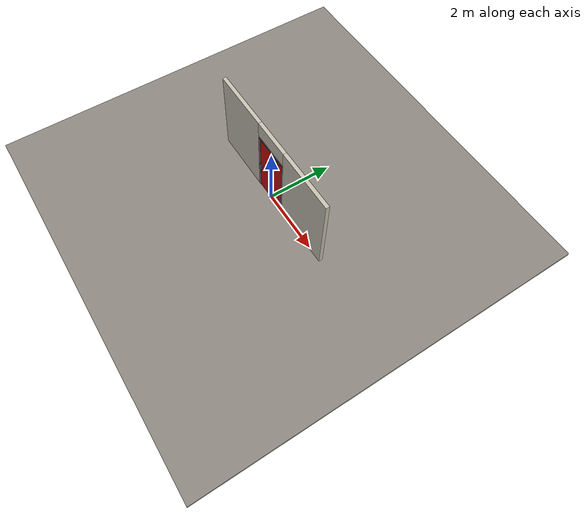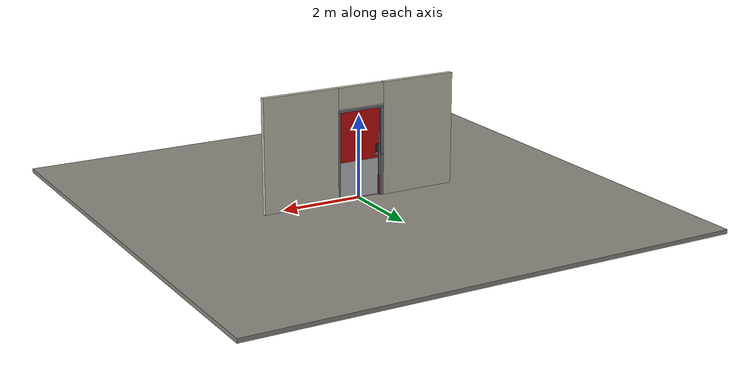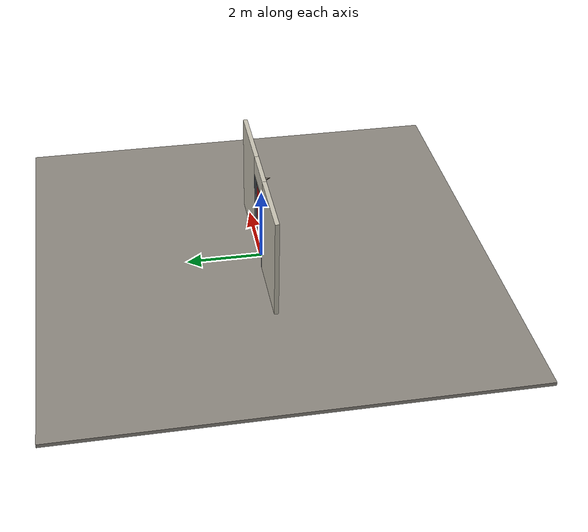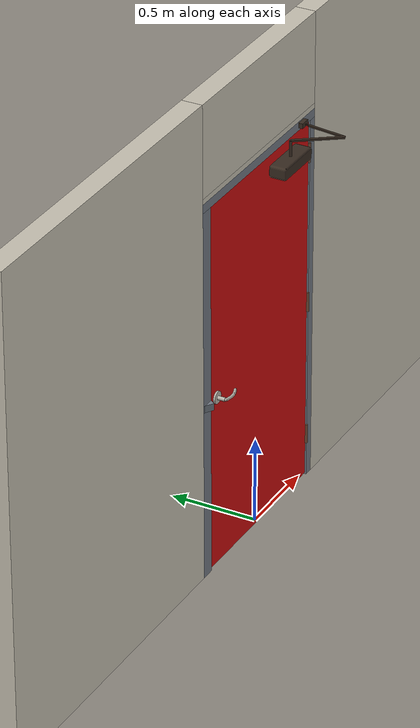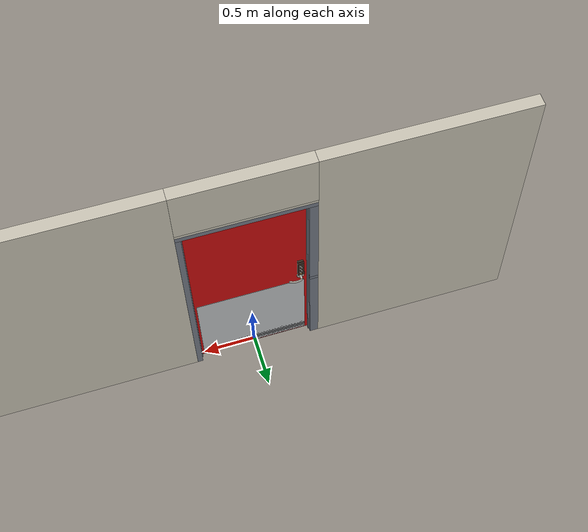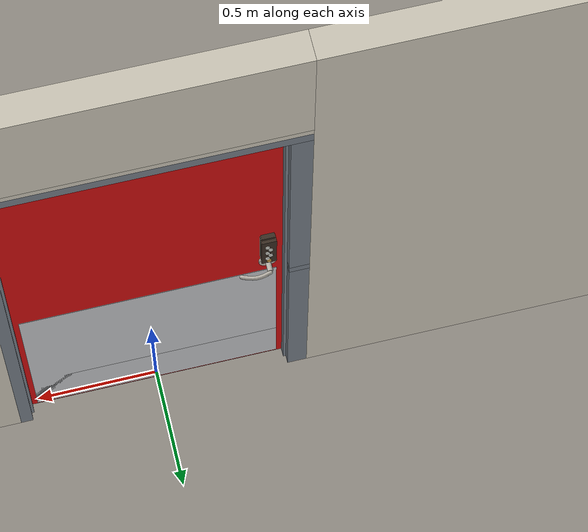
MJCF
<?xml version="1.0" ?>
<mujoco model="db0264_swing_single_full">
  <compiler angle="radian" meshdir="../../hardware" texturedir="../../textures" autolimits="true" inertiafromgeom="false"/>
  <option timestep="0.002" integrator="implicitfast" cone="elliptic" impratio="10" noslip_iterations="3">
    <flag multiccd="enable"/>
  </option>
  <size memory="16M"/>
  <default>
    <geom condim="4" solref="0.005 1" solimp="0.95 0.99 0.001"/>
    <joint solreflimit="0.005 1" solimplimit="0.95 0.99 0.001"/>
    <tendon solreflimit="0.005 1"/>
    <equality solref="0.002 1"/>
  </default>
  <visual>
    <headlight ambient="0.4 0.4 0.4" diffuse="0.7 0.7 0.7" specular="0.2 0.2 0.2"/>
    <quality shadowsize="4096"/>
    <map znear="0.01" zfar="60"/>
  </visual>
  <asset>
    <mesh name="closer_body_fdc4667657" file="closer_body_fdc4667657.obj"/>
    <mesh name="hinge_e22b26c0c1" file="hinge_e22b26c0c1.obj"/>
    <mesh name="hinge_jamb_e1d088f8dc" file="hinge_jamb_e1d088f8dc.obj"/>
    <mesh name="keypad_body_91eb8ded3e" file="keypad_body_91eb8ded3e.obj"/>
    <mesh name="lever_a61139b160" file="lever_a61139b160.obj"/>
    <material name="mat_floor" rgba="0.55 0.53 0.5 1" specular="0.2" shininess="0.15" reflectance="0"/>
    <material name="mat_wall" rgba="0.78 0.76 0.7 1" specular="0.2" shininess="0.1" reflectance="0"/>
    <material name="mat_leaf" rgba="0.8 0.05 0.05 1" specular="0.23" shininess="0.36" reflectance="0.02"/>
    <material name="mat_hinge" rgba="0.45 0.3 0.22 1" specular="0.5" shininess="0.1" reflectance="0.2"/>
    <material name="mat_op_nickel_satin" rgba="0.72 0.7 0.66 1" specular="0.8" shininess="0.65" reflectance="0.4"/>
    <material name="mat_trim" rgba="0.85 0.66 0.3 1" specular="0.8" shininess="0.75" reflectance="0.4"/>
    <material name="mat_keypad" rgba="0.22 0.17 0.13 1" specular="0.8" shininess="0.6" reflectance="0.4"/>
    <material name="mat_key" rgba="0.85 0.85 0.82 1" specular="0.2" shininess="0.5" reflectance="0"/>
    <material name="mat_bolt" rgba="0.75 0.76 0.77 1" specular="0.8" shininess="0.65" reflectance="0.4"/>
    <material name="mat_frame" rgba="0.45 0.48 0.52 1" specular="0.32" shininess="0.6" reflectance="0.08"/>
    <material name="mat_closer" rgba="0.22 0.17 0.13 1" specular="0.8" shininess="0.6" reflectance="0.4"/>
    <material name="mat_kick" rgba="0.75 0.76 0.77 1" specular="0.8" shininess="0.65" reflectance="0.4"/>
    <texture name="skybox" type="skybox" builtin="gradient" rgb1="0.6 0.7 0.85" rgb2="0.9 0.92 0.95" width="256" height="256"/>
  </asset>
  <worldbody>
    <light name="sun" pos="1.5 -2.5 4" dir="-0.3 0.5 -0.8" directional="true" diffuse="0.8 0.8 0.8" specular="0.3 0.3 0.3" castshadow="true"/>
    <light name="fill" pos="-1.5 2.5 3" dir="0.3 -0.5 -0.7" directional="true" diffuse="0.35 0.35 0.4" castshadow="false"/>
    <camera name="robot_view" pos="0 -2.609312 1.812087" xyaxes="1 0 0 0 0.26963 0.962964" fovy="52"/>
    <camera name="far_view" pos="0 2.666313 1.812087" xyaxes="-1 0 0 0 -0.26963 0.962964" fovy="52"/>
    <camera name="iso" pos="-2.004737 -2.187262 2.234138" xyaxes="0.741536 -0.670913 0 0.242917 0.268487 0.932151" fovy="46"/>
    <camera name="detail_handle" pos="-0.1984 -0.877 1.296" xyaxes="0.97561 0.219512 0 -0.070934 0.315262 0.94635" fovy="38"/>
    <geom name="floor" type="box" size="6 6 0.05" pos="0 0 -0.05" material="mat_floor" group="0" contype="1" conaffinity="1" friction="0.8 0.005 0.0001" density="2400"/>
    <geom name="wall_left" type="box" size="0.9415 0.0575 1.3735" pos="-1.5585 0.0285 1.3735" material="mat_wall" group="0" contype="1" conaffinity="1" friction="0.6 0.005 0.0001" density="800"/>
    <geom name="wall_right" type="box" size="0.9565 0.0575 1.3735" pos="1.5435 0.0285 1.3735" material="mat_wall" group="0" contype="1" conaffinity="1" friction="0.6 0.005 0.0001" density="800"/>
    <geom name="wall_header" type="box" size="0.602 0.0575 0.26" pos="-0.015 0.0285 2.487" material="mat_wall" group="0" contype="1" conaffinity="1" friction="0.6 0.005 0.0001" density="800"/>
    <geom name="hinge_0_jamb" type="mesh" mesh="hinge_jamb_e1d088f8dc" pos="0.534 -0.029 0.259" quat="0 0 1 0" material="mat_hinge" group="1" contype="0" conaffinity="0" density="7850"/>
    <geom name="hinge_1_jamb" type="mesh" mesh="hinge_jamb_e1d088f8dc" pos="0.534 -0.029 1.076" quat="0 0 1 0" material="mat_hinge" group="1" contype="0" conaffinity="0" density="7850"/>
    <geom name="hinge_2_jamb" type="mesh" mesh="hinge_jamb_e1d088f8dc" pos="0.534 -0.029 1.963" quat="0 0 1 0" material="mat_hinge" group="1" contype="0" conaffinity="0" density="7850"/>
    <geom name="jamb_hinge" type="box" size="0.025 0.0575 1.0735" pos="0.562 0.0285 1.0735" material="mat_frame" group="0" contype="1" conaffinity="1" friction="0.6 0.005 0.0001" density="300"/>
    <geom name="strike_1016_wall_n" type="box" size="0.04 0.0375 0.02" pos="-0.577 0.0485 1.016" material="mat_frame" group="0" contype="1" conaffinity="1" friction="0.6 0.005 0.0001" density="300"/>
    <geom name="strike_1016_wall_p" type="box" size="0.04 0.008 0.02" pos="-0.577 -0.019 1.016" material="mat_frame" group="0" contype="1" conaffinity="1" friction="0.6 0.005 0.0001" density="300"/>
    <geom name="strike_1016_ramp" type="box" size="0.04 0.018028 0.02" pos="-0.580282 -0.019812 1.016" quat="0.957092 0 0 -0.289784" material="mat_frame" group="0" contype="1" conaffinity="1" friction="0.12 0.005 0.0001" density="300"/>
    <geom name="strike_1016_back" type="box" size="0.0285 0.011 0.02" pos="-0.5885 0 1.016" material="mat_frame" group="0" contype="1" conaffinity="1" friction="0.6 0.005 0.0001" density="300"/>
    <geom name="jamb_strike_0" type="box" size="0.04 0.0575 0.498" pos="-0.577 0.0285 0.498" material="mat_frame" group="0" contype="1" conaffinity="1" friction="0.6 0.005 0.0001" density="300"/>
    <geom name="jamb_strike_1" type="box" size="0.04 0.0575 0.5555" pos="-0.577 0.0285 1.5915" material="mat_frame" group="0" contype="1" conaffinity="1" friction="0.6 0.005 0.0001" density="300"/>
    <geom name="jamb_head" type="box" size="0.602 0.0575 0.025" pos="-0.015 0.0285 2.172" material="mat_frame" group="0" contype="1" conaffinity="1" friction="0.6 0.005 0.0001" density="300"/>
    <geom name="head_stud" type="box" size="0.602 0.0575 0.015" pos="-0.015 0.0285 2.212" material="mat_wall" group="0" contype="1" conaffinity="1" friction="0.6 0.005 0.0001" density="500"/>
    <geom name="stop_hinge" type="box" size="0.0055 0.016 1.0735" pos="0.5315 0.0385 1.0735" material="mat_frame" group="0" contype="1" conaffinity="1" friction="0.6 0.005 0.0001" density="300"/>
    <geom name="stop_strike" type="box" size="0.0055 0.016 1.0735" pos="-0.5315 0.0385 1.0735" material="mat_frame" group="0" contype="1" conaffinity="1" friction="0.6 0.005 0.0001" density="300"/>
    <geom name="stop_head" type="box" size="0.537 0.016 0.0055" pos="0 0.0385 2.1415" material="mat_frame" group="0" contype="1" conaffinity="1" friction="0.6 0.005 0.0001" density="300"/>
    <geom name="closer_bracket" type="box" size="0.03 0.012 0.014" pos="0.437 -0.041 2.177" material="mat_closer" group="1" contype="0" conaffinity="0" density="2700"/>
    <site name="approach_point" pos="0 -1.5 0" quat="1 0 0 0" size="0.05" rgba="0.2 0.9 0.2 0.5" group="4"/>
    <site name="goal_point" pos="0 1.5 0" quat="1 0 0 0" size="0.05" rgba="0.2 0.9 0.2 0.5" group="4"/>
    <site name="door_plane_center" pos="0 0 1.0735" quat="1 0 0 0" size="0.02" rgba="0.2 0.9 0.2 0.5" group="4"/>
    <body name="leaf" pos="0.537 0 0">
      <inertial pos="-0.495524 -0.008277 1.129143" mass="68.154272" quat="0.465127 0.488717 0.524075 -0.519768" diaginertia="5.863633266 34.327368754 40.091614627"/>
      <joint name="leaf_hinge" type="hinge" axis="0 0 1" pos="-0.003 -0.029 0" limited="true" range="0 1.745329" damping="12.49954" frictionloss="8.134149" stiffness="15.673579" springref="-1.79155" armature="0.02"/>
      <geom name="leaf_slab" type="box" size="0.5335 0.022 1.067" pos="-0.5365 0 1.076" material="mat_leaf" group="0" contype="1" conaffinity="1" friction="0.4 0.005 0.0001" density="1"/>
      <geom name="hinge_0" type="mesh" mesh="hinge_e22b26c0c1" pos="-0.003 -0.029 0.259" quat="0 0 1 0" material="mat_hinge" group="1" contype="0" conaffinity="0" density="7850"/>
      <geom name="hinge_1" type="mesh" mesh="hinge_e22b26c0c1" pos="-0.003 -0.029 1.076" quat="0 0 1 0" material="mat_hinge" group="1" contype="0" conaffinity="0" density="7850"/>
      <geom name="hinge_2" type="mesh" mesh="hinge_e22b26c0c1" pos="-0.003 -0.029 1.963" quat="0 0 1 0" material="mat_hinge" group="1" contype="0" conaffinity="0" density="7850"/>
      <geom name="leaf_keypad_body" type="mesh" mesh="keypad_body_91eb8ded3e" pos="-1.005 0.022 1.156" quat="0 0 0.707107 0.707107" material="mat_keypad" group="0" contype="1" conaffinity="1" friction="0.6 0.005 0.0001" density="2000"/>
      <geom name="leaf_keypad_cylinder" type="cylinder" size="0.009 0.002" pos="-1.005 0.056 1.081" quat="0.707107 -0.707107 0 0" material="mat_trim" group="1" contype="0" conaffinity="0" density="7100"/>
      <geom name="closer_body" type="mesh" mesh="closer_body_fdc4667657" pos="-0.3 -0.022 2.054" quat="0 0 -0.707107 0.707107" material="mat_closer" group="1" contype="0" conaffinity="0" density="2000"/>
      <geom name="closer_body_col" type="box" size="0.145 0.05 0.035" pos="-0.3 -0.072 2.054" material="mat_closer" group="3" contype="1" conaffinity="1" rgba="0.8 0.3 0.3 0.25" friction="0.6 0.005 0.0001" density="2000"/>
      <geom name="closer_pinion_shaft" type="cylinder" size="0.008 0.0615" pos="-0.3 -0.072 2.1155" material="mat_closer" group="1" contype="0" conaffinity="0" density="2700"/>
      <geom name="kick_plate_p" type="box" size="0.5035 0.0008 0.125" pos="-0.5365 0.0228 0.144" material="mat_kick" group="2" contype="0" conaffinity="0" density="7900"/>
      <geom name="armor_plate" type="box" size="0.5035 0.0008 0.45" pos="-0.5365 0.0228 0.469" material="mat_kick" group="2" contype="0" conaffinity="0" density="7900"/>
      <site name="leaf_edge_mid" pos="-1.07 0 1.067" quat="1 0 0 0" size="0.02" rgba="0.2 0.9 0.2 0.5" group="4"/>
      <body name="leaf_handle" pos="-1.005 0 1.016">
        <inertial pos="0.022132 -0.050687 0" mass="0.463269" quat="0.312008 0 0 0.950079" diaginertia="0.000227859 0.000847742 0.000992066"/>
        <joint name="leaf_handle_hinge" type="hinge" axis="0 1 0" limited="true" range="0 0.87" damping="0.208392" frictionloss="0.052" stiffness="1" springref="-0.35" armature="0.01"/>
        <geom name="leaf_handle_spindle" type="cylinder" size="0.006 0.03" pos="0 0 0" quat="0.707107 -0.707107 0 0" material="mat_op_nickel_satin" group="1" contype="0" conaffinity="0" density="7850"/>
        <geom name="leaf_handle_lever_n" type="mesh" mesh="lever_a61139b160" pos="0 -0.022 0" quat="0 0 -0.707107 0.707107" material="mat_op_nickel_satin" group="1" contype="0" conaffinity="0" density="3000"/>
        <geom name="leaf_handle_lever_col_n" type="capsule" size="0.008 0.048" pos="0.056 -0.077 0" quat="0.707107 0 0.707107 0" material="mat_op_nickel_satin" group="3" contype="1" conaffinity="1" rgba="0.8 0.3 0.3 0.25" friction="0.7 0.01 0.0001" density="3000"/>
        <geom name="leaf_handle_hub_col_n" type="cylinder" size="0.012 0.022" pos="0 -0.052 0" quat="0.707107 -0.707107 0 0" material="mat_op_nickel_satin" group="3" contype="1" conaffinity="1" rgba="0.8 0.3 0.3 0.25" friction="0.6 0.005 0.0001" density="3000"/>
        <site name="leaf_handle_grip_n" pos="0.0896 -0.077 0" quat="1 0 0 0" size="0.012" rgba="0.2 0.9 0.2 0.5" group="4"/>
      </body>
      <body name="leaf_keypad_key_1" pos="-0.999 0.054 1.208">
        <inertial pos="0 0.002 0" mass="0.001221" quat="0 0 0.707107 -0.707107" diaginertia="0.000000026 0.000000026 0.000000049"/>
        <joint name="leaf_keypad_key_1_slide" type="slide" axis="0 -1 0" limited="true" range="0 0.004" damping="17.146" frictionloss="0.05" stiffness="1500" springref="-0.004" armature="0.1"/>
        <geom name="leaf_keypad_key_1_geom" type="cylinder" size="0.009 0.002" pos="0 0.002 0" quat="0.707107 -0.707107 0 0" material="mat_key" group="0" contype="1" conaffinity="1" friction="0.6 0.005 0.0001" density="1200"/>
        <site name="leaf_keypad_key_1_press" pos="0 0.006 0" quat="1 0 0 0" size="0.008" rgba="0.2 0.9 0.2 0.5" group="4"/>
      </body>
      <body name="leaf_keypad_key_2" pos="-1.011 0.054 1.182">
        <inertial pos="0 0.002 0" mass="0.001221" quat="0 0 0.707107 -0.707107" diaginertia="0.000000026 0.000000026 0.000000049"/>
        <joint name="leaf_keypad_key_2_slide" type="slide" axis="0 -1 0" limited="true" range="0 0.004" damping="17.146" frictionloss="0.05" stiffness="1500" springref="-0.004" armature="0.1"/>
        <geom name="leaf_keypad_key_2_geom" type="cylinder" size="0.009 0.002" pos="0 0.002 0" quat="0.707107 -0.707107 0 0" material="mat_key" group="0" contype="1" conaffinity="1" friction="0.6 0.005 0.0001" density="1200"/>
        <site name="leaf_keypad_key_2_press" pos="0 0.006 0" quat="1 0 0 0" size="0.008" rgba="0.2 0.9 0.2 0.5" group="4"/>
      </body>
      <body name="leaf_keypad_key_3" pos="-0.999 0.054 1.156">
        <inertial pos="0 0.002 0" mass="0.001221" quat="0 0 0.707107 -0.707107" diaginertia="0.000000026 0.000000026 0.000000049"/>
        <joint name="leaf_keypad_key_3_slide" type="slide" axis="0 -1 0" limited="true" range="0 0.004" damping="17.146" frictionloss="0.05" stiffness="1500" springref="-0.004" armature="0.1"/>
        <geom name="leaf_keypad_key_3_geom" type="cylinder" size="0.009 0.002" pos="0 0.002 0" quat="0.707107 -0.707107 0 0" material="mat_key" group="0" contype="1" conaffinity="1" friction="0.6 0.005 0.0001" density="1200"/>
        <site name="leaf_keypad_key_3_press" pos="0 0.006 0" quat="1 0 0 0" size="0.008" rgba="0.2 0.9 0.2 0.5" group="4"/>
      </body>
      <body name="leaf_keypad_key_4" pos="-1.011 0.054 1.13">
        <inertial pos="0 0.002 0" mass="0.001221" quat="0 0 0.707107 -0.707107" diaginertia="0.000000026 0.000000026 0.000000049"/>
        <joint name="leaf_keypad_key_4_slide" type="slide" axis="0 -1 0" limited="true" range="0 0.004" damping="17.146" frictionloss="0.05" stiffness="1500" springref="-0.004" armature="0.1"/>
        <geom name="leaf_keypad_key_4_geom" type="cylinder" size="0.009 0.002" pos="0 0.002 0" quat="0.707107 -0.707107 0 0" material="mat_key" group="0" contype="1" conaffinity="1" friction="0.6 0.005 0.0001" density="1200"/>
        <site name="leaf_keypad_key_4_press" pos="0 0.006 0" quat="1 0 0 0" size="0.008" rgba="0.2 0.9 0.2 0.5" group="4"/>
      </body>
      <body name="leaf_keypad_key_5" pos="-0.999 0.054 1.104">
        <inertial pos="0 0.002 0" mass="0.001221" quat="0 0 0.707107 -0.707107" diaginertia="0.000000026 0.000000026 0.000000049"/>
        <joint name="leaf_keypad_key_5_slide" type="slide" axis="0 -1 0" limited="true" range="0 0.004" damping="17.146" frictionloss="0.05" stiffness="1500" springref="-0.004" armature="0.1"/>
        <geom name="leaf_keypad_key_5_geom" type="cylinder" size="0.009 0.002" pos="0 0.002 0" quat="0.707107 -0.707107 0 0" material="mat_key" group="0" contype="1" conaffinity="1" friction="0.6 0.005 0.0001" density="1200"/>
        <site name="leaf_keypad_key_5_press" pos="0 0.006 0" quat="1 0 0 0" size="0.008" rgba="0.2 0.9 0.2 0.5" group="4"/>
      </body>
      <body name="leaf_handle_out" pos="-1.005 0 1.016">
        <inertial pos="0.025007 0.057273 0" mass="0.41" quat="-0.235955 0 0 0.971764" diaginertia="0.000156759 0.000717302 0.000791484"/>
        <joint name="leaf_handle_out_hinge" type="hinge" axis="0 1 0" limited="true" range="0 0.09" damping="0.208382" frictionloss="0.052" stiffness="1" springref="-0.35" armature="0.01"/>
        <geom name="leaf_handle_out_lever_p" type="mesh" mesh="lever_a61139b160" pos="0 0.022 0" quat="0 0 0.707107 0.707107" material="mat_op_nickel_satin" group="1" contype="0" conaffinity="0" density="3000"/>
        <geom name="leaf_handle_out_lever_col_p" type="capsule" size="0.008 0.048" pos="0.056 0.077 0" quat="0.707107 0 0.707107 0" material="mat_op_nickel_satin" group="3" contype="1" conaffinity="1" rgba="0.8 0.3 0.3 0.25" friction="0.7 0.01 0.0001" density="3000"/>
        <geom name="leaf_handle_out_hub_col_p" type="cylinder" size="0.012 0.022" pos="0 0.052 0" quat="0.707107 -0.707107 0 0" material="mat_op_nickel_satin" group="3" contype="1" conaffinity="1" rgba="0.8 0.3 0.3 0.25" friction="0.6 0.005 0.0001" density="3000"/>
        <site name="leaf_handle_out_grip_p" pos="0.0896 0.077 0" quat="1 0 0 0" size="0.012" rgba="0.2 0.9 0.2 0.5" group="4"/>
      </body>
      <body name="leaf_latch_bolt" pos="-1.07 0 1.016">
        <inertial pos="0.0055 0 0" mass="0.102826" quat="0.92388 0.382683 0 0" diaginertia="0.000004365 0.000018287 0.000018287"/>
        <joint name="leaf_latch_bolt_slide" type="slide" axis="1 0 0" limited="true" range="0 0.019" damping="2" frictionloss="0.3" stiffness="800" springref="-0.01" armature="0.1"/>
        <geom name="leaf_latch_bolt_capsule" type="capsule" size="0.0095 0.015" pos="0.0055 0 0" quat="0.707107 0 -0.707107 0" material="mat_bolt" group="0" contype="1" conaffinity="1" friction="0.2 0.005 0.0001" density="8500"/>
      </body>
      <body name="closer_arm_main" pos="-0.3 -0.072 2.177" quat="0.890947 0 0 -0.454107">
        <inertial pos="0.14 0 0" mass="0.12096" quat="1 0 0 0" diaginertia="0.000003588 0.00079128 0.000792852"/>
        <joint name="closer_pinion" type="hinge" axis="0 0 1" limited="false" damping="0.01" armature="0.002"/>
        <geom name="closer_arm_main_geom" type="box" size="0.14 0.008 0.005" pos="0.14 0 0" material="mat_closer" group="1" contype="0" conaffinity="0" density="2700"/>
        <body name="closer_arm_fore" pos="0.28 0 0" quat="0.373215 0 0 0.927745">
          <inertial pos="0.128088 0 0" mass="0.076531" quat="1 0 0 0" diaginertia="0.000001771 0.000437665 0.000438201"/>
          <joint name="closer_elbow" type="hinge" axis="0 0 1" limited="false" damping="0.01" armature="0.002"/>
          <geom name="closer_arm_fore_geom" type="box" size="0.1125 0.007 0.004" pos="0.1125 0 0" material="mat_closer" group="1" contype="0" conaffinity="0" density="2700"/>
          <geom name="closer_fore_neck" type="box" size="0.0175 0.003 0.003" pos="0.2425 0 0" material="mat_closer" group="1" contype="0" conaffinity="0" density="2700"/>
          <geom name="closer_fore_pivot" type="cylinder" size="0.005 0.012" pos="0.26 0 0" material="mat_closer" group="1" contype="0" conaffinity="0" density="2700"/>
        </body>
      </body>
    </body>
  </worldbody>
  <tendon>
    <fixed name="leaf_latch_bolt_coupling" limited="true" range="0 10">
      <joint joint="leaf_latch_bolt_slide" coef="1"/>
      <joint joint="leaf_handle_hinge" coef="-0.023457"/>
      <joint joint="leaf_handle_out_hinge" coef="-0.023457"/>
    </fixed>
  </tendon>
  <equality>
    <connect name="closer_arm_connect" body1="closer_arm_fore" body2="world" anchor="0.26 0 0" active="true"/>
  </equality>
  <contact>
    <exclude body1="closer_arm_main" body2="leaf"/>
    <exclude body1="closer_arm_fore" body2="leaf"/>
    <exclude body1="closer_arm_main" body2="closer_arm_fore"/>
  </contact>
  <sensor>
    <jointpos name="leaf_hinge_pos" joint="leaf_hinge"/>
    <jointvel name="leaf_hinge_vel" joint="leaf_hinge"/>
    <jointpos name="leaf_handle_hinge_pos" joint="leaf_handle_hinge"/>
    <jointvel name="leaf_handle_hinge_vel" joint="leaf_handle_hinge"/>
    <jointpos name="leaf_keypad_key_1_slide_pos" joint="leaf_keypad_key_1_slide"/>
    <jointvel name="leaf_keypad_key_1_slide_vel" joint="leaf_keypad_key_1_slide"/>
    <jointpos name="leaf_keypad_key_2_slide_pos" joint="leaf_keypad_key_2_slide"/>
    <jointvel name="leaf_keypad_key_2_slide_vel" joint="leaf_keypad_key_2_slide"/>
    <jointpos name="leaf_keypad_key_3_slide_pos" joint="leaf_keypad_key_3_slide"/>
    <jointvel name="leaf_keypad_key_3_slide_vel" joint="leaf_keypad_key_3_slide"/>
    <jointpos name="leaf_keypad_key_4_slide_pos" joint="leaf_keypad_key_4_slide"/>
    <jointvel name="leaf_keypad_key_4_slide_vel" joint="leaf_keypad_key_4_slide"/>
    <jointpos name="leaf_keypad_key_5_slide_pos" joint="leaf_keypad_key_5_slide"/>
    <jointvel name="leaf_keypad_key_5_slide_vel" joint="leaf_keypad_key_5_slide"/>
    <jointpos name="leaf_handle_out_hinge_pos" joint="leaf_handle_out_hinge"/>
    <jointvel name="leaf_handle_out_hinge_vel" joint="leaf_handle_out_hinge"/>
    <jointpos name="leaf_latch_bolt_slide_pos" joint="leaf_latch_bolt_slide"/>
    <jointvel name="leaf_latch_bolt_slide_vel" joint="leaf_latch_bolt_slide"/>
  </sensor>
</mujoco>
